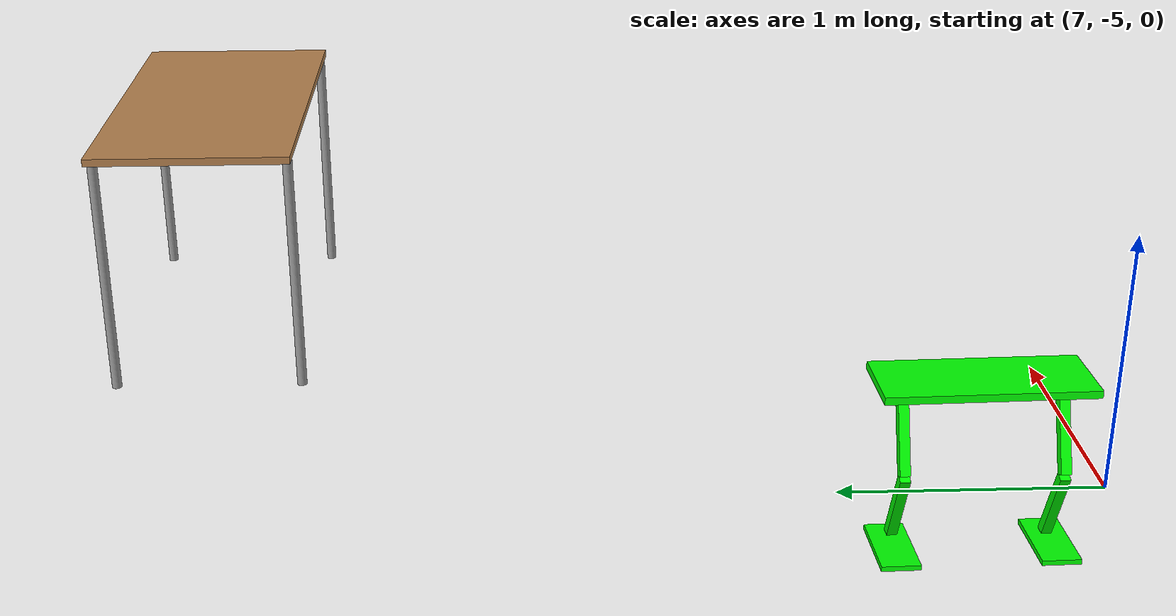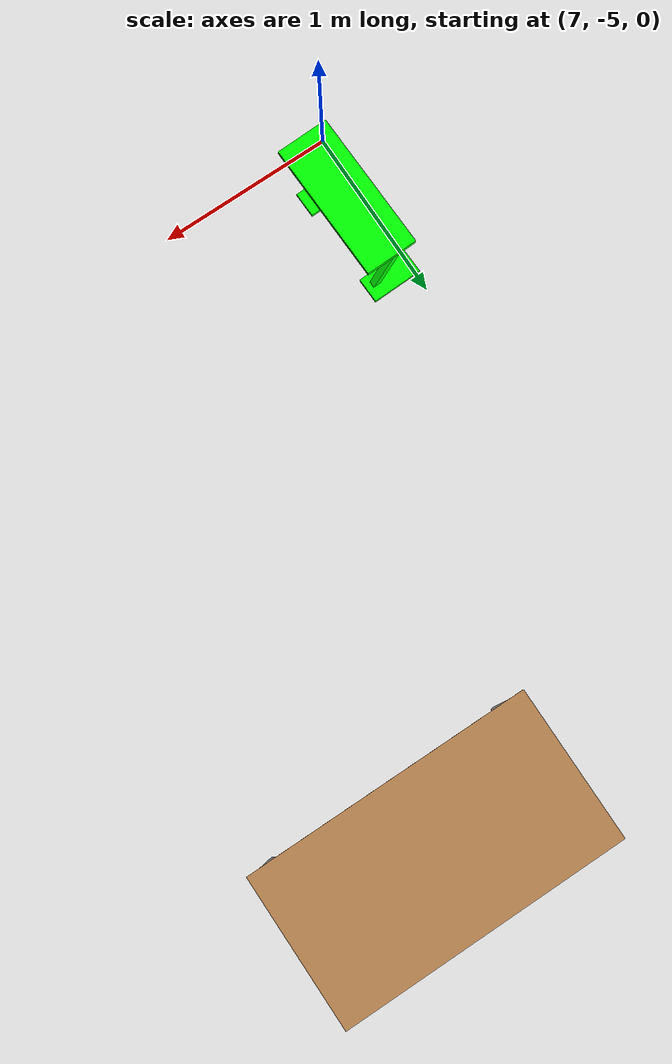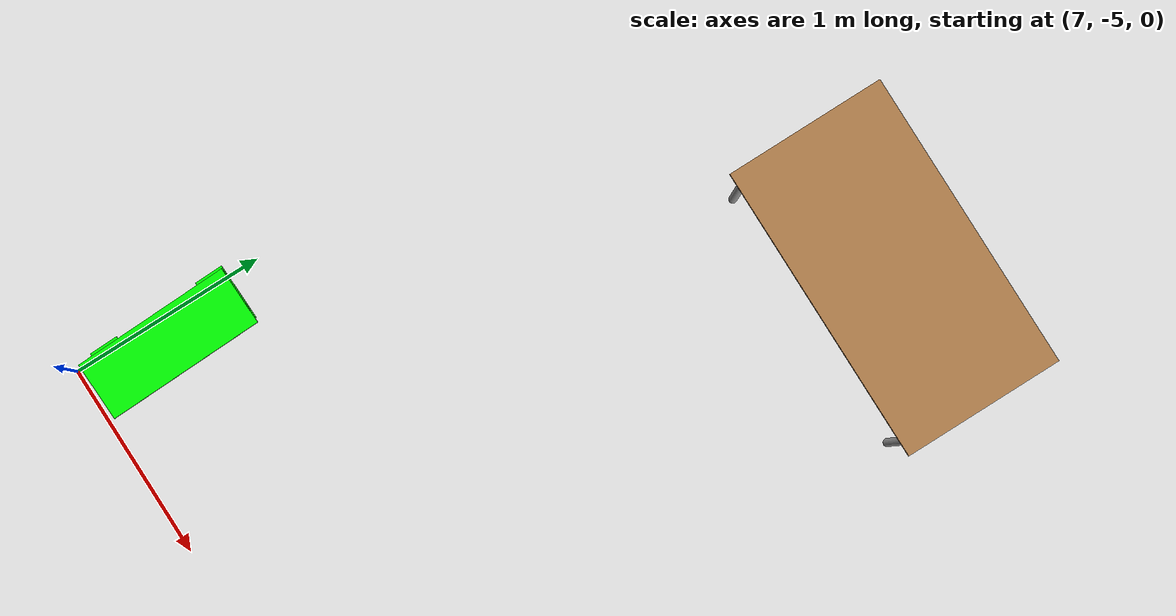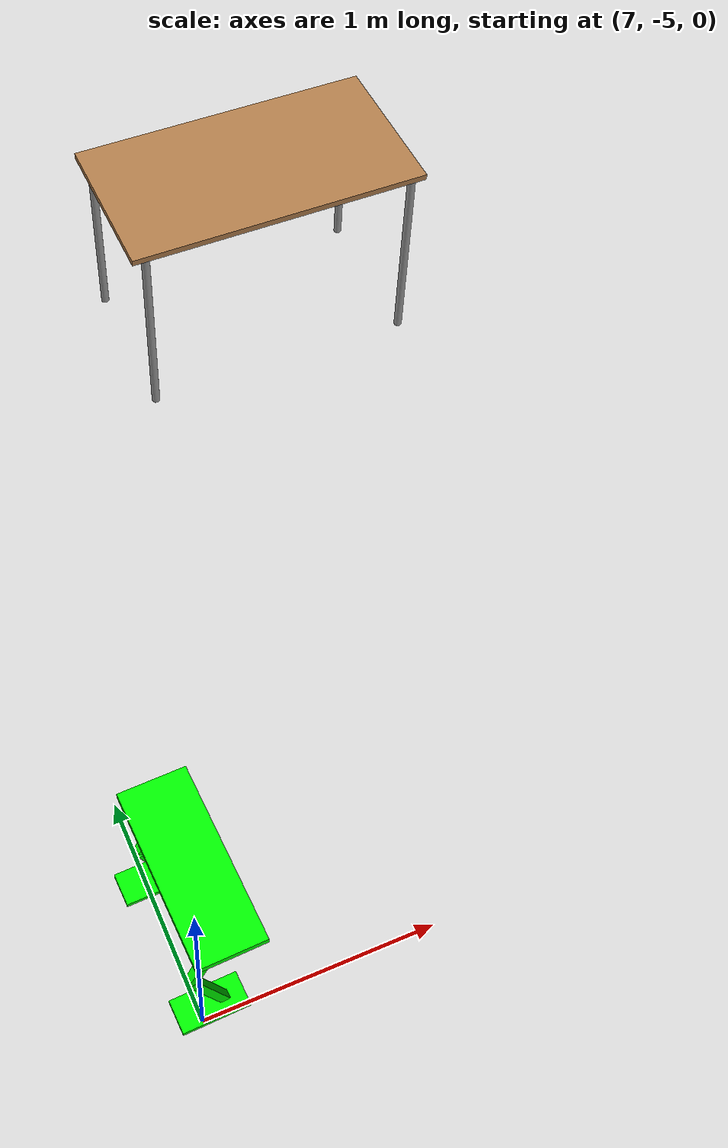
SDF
<sdf version="1.6">
 <world name="__default__">
  <model name="table_9">
   <static>1</static>
   <link name="link">
    <collision name="surface">
     <pose>0 0 1 0 -0 0</pose>
     <geometry><box><size>1.5 0.8 0.03</size></box></geometry>
     <surface><friction><ode><mu>0.6</mu><mu2>0.6</mu2></ode></friction></surface>
    </collision>
    <visual name="visual1">
     <pose>0 0 1 0 -0 0</pose>
     <geometry><box><size>1.5 0.8 0.03</size></box></geometry>
     <material>
      <script><uri>file://media/materials/scripts/gazebo.material</uri><name>Gazebo/Wood</name></script>
     </material>
    </visual>
    <collision name="front_left_leg">
     <pose>0.68 0.38 0.5 0 -0 0</pose>
     <geometry><cylinder><radius>0.02</radius><length>1</length></cylinder></geometry>
    </collision>
    <visual name="front_left_leg">
     <pose>0.68 0.38 0.5 0 -0 0</pose>
     <geometry><cylinder><radius>0.02</radius><length>1</length></cylinder></geometry>
     <material>
      <script><uri>file://media/materials/scripts/gazebo.material</uri><name>Gazebo/Grey</name></script>
     </material>
    </visual>
    <collision name="front_right_leg">
     <pose>0.68 -0.38 0.5 0 -0 0</pose>
     <geometry><cylinder><radius>0.02</radius><length>1</length></cylinder></geometry>
    </collision>
    <visual name="front_right_leg">
     <pose>0.68 -0.38 0.5 0 -0 0</pose>
     <geometry><cylinder><radius>0.02</radius><length>1</length></cylinder></geometry>
     <material>
      <script><uri>file://media/materials/scripts/gazebo.material</uri><name>Gazebo/Grey</name></script>
     </material>
    </visual>
    <collision name="back_right_leg">
     <pose>-0.68 -0.38 0.5 0 -0 0</pose>
     <geometry><cylinder><radius>0.02</radius><length>1</length></cylinder></geometry>
    </collision>
    <visual name="back_right_leg">
     <pose>-0.68 -0.38 0.5 0 -0 0</pose>
     <geometry><cylinder><radius>0.02</radius><length>1</length></cylinder></geometry>
     <material>
      <script><uri>file://media/materials/scripts/gazebo.material</uri><name>Gazebo/Grey</name></script>
     </material>
    </visual>
    <collision name="back_left_leg">
     <pose>-0.68 0.38 0.5 0 -0 0</pose>
     <geometry><cylinder><radius>0.02</radius><length>1</length></cylinder></geometry>
    </collision>
    <visual name="back_left_leg">
     <pose>-0.68 0.38 0.5 0 -0 0</pose>
     <geometry><cylinder><radius>0.02</radius><length>1</length></cylinder></geometry>
     <material>
      <script><uri>file://media/materials/scripts/gazebo.material</uri><name>Gazebo/Grey</name></script>
     </material>
    </visual>
   </link>
   <pose>8.64486 -1.56892 0 0 -0 0</pose>
  </model>
  <model name="HumanoidRobot_0">
   <link name="link_0">
    <inertial>
     <mass>0.01</mass>
     <inertia>
      <ixx>0.00166667</ixx>
      <ixy>0</ixy>
      <ixz>0</ixz>
      <iyy>0.00166667</iyy>
      <iyz>0</iyz>
      <izz>0.00166667</izz>
     </inertia>
    </inertial>
    <pose>0.307131 0.017264 -0.279905 0 -0 0</pose>
    <visual name="visual">
     <geometry><box><size>0.15 0.3 0.02</size></box></geometry>
     <material>
      <lighting>1</lighting>
      <script><uri>file://media/materials/scripts/gazebo.material</uri><name>Gazebo/Grey</name></script>
      <shader type="pixel"><normal_map>__default__</normal_map></shader>
      <ambient>0 1 0 1</ambient>
      <diffuse>0.7 0.7 0.7 1</diffuse>
      <specular>0.01 0.01 0.01 1</specular>
      <emissive>0 0 0 1</emissive>
     </material>
    </visual>
    <collision name="collision">
     <geometry><box><size>0.15 0.3 0.02</size></box></geometry>
     <surface>
      <friction>
       <ode><mu>1</mu><mu2>1</mu2><fdir1>0 0 0</fdir1><slip1>0</slip1><slip2>0</slip2></ode>
       <torsional>
        <coefficient>1</coefficient>
        <patch_radius>0</patch_radius>
        <surface_radius>0</surface_radius>
        <use_patch_radius>1</use_patch_radius>
        <ode><slip>0</slip></ode>
       </torsional>
      </friction>
      <bounce><restitution_coefficient>0</restitution_coefficient><threshold>1e+06</threshold></bounce>
      <contact>
       <collide_without_contact>0</collide_without_contact>
       <collide_without_contact_bitmask>1</collide_without_contact_bitmask>
       <collide_bitmask>1</collide_bitmask>
       <ode>
        <soft_cfm>0</soft_cfm>
        <soft_erp>0.2</soft_erp>
        <kp>1e+13</kp>
        <kd>1</kd>
        <max_vel>0.01</max_vel>
        <min_depth>0</min_depth>
       </ode>
       <bullet>
        <split_impulse>1</split_impulse>
        <split_impulse_penetration_threshold>-0.01</split_impulse_penetration_threshold>
        <soft_cfm>0</soft_cfm>
        <soft_erp>0.2</soft_erp>
        <kp>1e+13</kp>
        <kd>1</kd>
       </bullet>
      </contact>
     </surface>
    </collision>
   </link>
   <link name="link_0_clone">
    <inertial>
     <mass>0.01</mass>
     <inertia>
      <ixx>0.00166667</ixx>
      <ixy>0</ixy>
      <ixz>0</ixz>
      <iyy>0.00166667</iyy>
      <iyz>0</iyz>
      <izz>0.00166667</izz>
     </inertia>
    </inertial>
    <pose>-0.298802 0.017264 -0.279905 0 -0 0</pose>
    <visual name="visual">
     <geometry><box><size>0.15 0.3 0.02</size></box></geometry>
     <material>
      <lighting>1</lighting>
      <script><uri>file://media/materials/scripts/gazebo.material</uri><name>Gazebo/Grey</name></script>
      <shader type="pixel"><normal_map>__default__</normal_map></shader>
      <ambient>0 1 0 1</ambient>
      <diffuse>0.7 0.7 0.7 1</diffuse>
      <specular>0.01 0.01 0.01 1</specular>
      <emissive>0 0 0 1</emissive>
     </material>
    </visual>
    <collision name="collision">
     <geometry><box><size>0.15 0.3 0.02</size></box></geometry>
     <surface>
      <friction>
       <ode><mu>1</mu><mu2>1</mu2><fdir1>0 0 0</fdir1><slip1>0</slip1><slip2>0</slip2></ode>
       <torsional>
        <coefficient>1</coefficient>
        <patch_radius>0</patch_radius>
        <surface_radius>0</surface_radius>
        <use_patch_radius>1</use_patch_radius>
        <ode><slip>0</slip></ode>
       </torsional>
      </friction>
      <bounce><restitution_coefficient>0</restitution_coefficient><threshold>1e+06</threshold></bounce>
      <contact>
       <collide_without_contact>0</collide_without_contact>
       <collide_without_contact_bitmask>1</collide_without_contact_bitmask>
       <collide_bitmask>1</collide_bitmask>
       <ode>
        <soft_cfm>0</soft_cfm>
        <soft_erp>0.2</soft_erp>
        <kp>1e+13</kp>
        <kd>1</kd>
        <max_vel>0.01</max_vel>
        <min_depth>0</min_depth>
       </ode>
       <bullet>
        <split_impulse>1</split_impulse>
        <split_impulse_penetration_threshold>-0.01</split_impulse_penetration_threshold>
        <soft_cfm>0</soft_cfm>
        <soft_erp>0.2</soft_erp>
        <kp>1e+13</kp>
        <kd>1</kd>
       </bullet>
      </contact>
     </surface>
    </collision>
   </link>
   <link name="link_1">
    <inertial>
     <mass>0.3</mass>
     <inertia><ixx>0.05</ixx><ixy>0</ixy><ixz>0</ixz><iyy>0.05</iyy><iyz>0</iyz><izz>0.05</izz></inertia>
    </inertial>
    <pose>0.29303 -0.009452 -0.120931 0 -0 0</pose>
    <visual name="visual">
     <pose>0 0 0 -0.4 0 0</pose>
     <geometry><box><size>0.04 0.04 0.35</size></box></geometry>
     <material>
      <lighting>1</lighting>
      <script><uri>file://media/materials/scripts/gazebo.material</uri><name>Gazebo/Grey</name></script>
      <shader type="pixel"><normal_map>__default__</normal_map></shader>
      <ambient>0 1 0 1</ambient>
      <diffuse>0.7 0.7 0.7 1</diffuse>
      <specular>0.01 0.01 0.01 1</specular>
      <emissive>0 0 0 1</emissive>
     </material>
    </visual>
    <collision name="collision">
     <pose>0 0 0 -0.4 0 0</pose>
     <geometry><box><size>0.04 0.04 0.35</size></box></geometry>
     <surface>
      <friction>
       <ode><mu>1</mu><mu2>1</mu2><fdir1>0 0 0</fdir1><slip1>0</slip1><slip2>0</slip2></ode>
       <torsional>
        <coefficient>1</coefficient>
        <patch_radius>0</patch_radius>
        <surface_radius>0</surface_radius>
        <use_patch_radius>1</use_patch_radius>
        <ode><slip>0</slip></ode>
       </torsional>
      </friction>
      <bounce><restitution_coefficient>0</restitution_coefficient><threshold>1e+06</threshold></bounce>
      <contact>
       <collide_without_contact>0</collide_without_contact>
       <collide_without_contact_bitmask>1</collide_without_contact_bitmask>
       <collide_bitmask>1</collide_bitmask>
       <ode>
        <soft_cfm>0</soft_cfm>
        <soft_erp>0.2</soft_erp>
        <kp>1e+13</kp>
        <kd>1</kd>
        <max_vel>0.01</max_vel>
        <min_depth>0</min_depth>
       </ode>
       <bullet>
        <split_impulse>1</split_impulse>
        <split_impulse_penetration_threshold>-0.01</split_impulse_penetration_threshold>
        <soft_cfm>0</soft_cfm>
        <soft_erp>0.2</soft_erp>
        <kp>1e+13</kp>
        <kd>1</kd>
       </bullet>
      </contact>
     </surface>
    </collision>
   </link>
   <link name="link_1_clone">
    <inertial>
     <mass>0.3</mass>
     <inertia><ixx>0.05</ixx><ixy>0</ixy><ixz>0</ixz><iyy>0.05</iyy><iyz>0</iyz><izz>0.05</izz></inertia>
    </inertial>
    <pose>0.295816 -0.009452 0.210095 0 -0 0</pose>
    <visual name="visual">
     <pose>0 0 0 0.4 -0 0</pose>
     <geometry><box><size>0.04 0.04 0.35</size></box></geometry>
     <material>
      <lighting>1</lighting>
      <script><uri>file://media/materials/scripts/gazebo.material</uri><name>Gazebo/Grey</name></script>
      <shader type="pixel"><normal_map>__default__</normal_map></shader>
      <ambient>0 1 0 1</ambient>
      <diffuse>0.7 0.7 0.7 1</diffuse>
      <specular>0.01 0.01 0.01 1</specular>
      <emissive>0 0 0 1</emissive>
     </material>
    </visual>
    <collision name="collision">
     <pose>0 0 0 0.4 -0 0</pose>
     <geometry><box><size>0.04 0.04 0.35</size></box></geometry>
     <surface>
      <friction>
       <ode><mu>1</mu><mu2>1</mu2><fdir1>0 0 0</fdir1><slip1>0</slip1><slip2>0</slip2></ode>
       <torsional>
        <coefficient>1</coefficient>
        <patch_radius>0</patch_radius>
        <surface_radius>0</surface_radius>
        <use_patch_radius>1</use_patch_radius>
        <ode><slip>0</slip></ode>
       </torsional>
      </friction>
      <bounce><restitution_coefficient>0</restitution_coefficient><threshold>1e+06</threshold></bounce>
      <contact>
       <collide_without_contact>0</collide_without_contact>
       <collide_without_contact_bitmask>1</collide_without_contact_bitmask>
       <collide_bitmask>1</collide_bitmask>
       <ode>
        <soft_cfm>0</soft_cfm>
        <soft_erp>0.2</soft_erp>
        <kp>1e+13</kp>
        <kd>1</kd>
        <max_vel>0.01</max_vel>
        <min_depth>0</min_depth>
       </ode>
       <bullet>
        <split_impulse>1</split_impulse>
        <split_impulse_penetration_threshold>-0.01</split_impulse_penetration_threshold>
        <soft_cfm>0</soft_cfm>
        <soft_erp>0.2</soft_erp>
        <kp>1e+13</kp>
        <kd>1</kd>
       </bullet>
      </contact>
     </surface>
    </collision>
   </link>
   <link name="link_1_clone_0">
    <inertial>
     <mass>0.3</mass>
     <inertia><ixx>0.05</ixx><ixy>0</ixy><ixz>0</ixz><iyy>0.05</iyy><iyz>0</iyz><izz>0.05</izz></inertia>
    </inertial>
    <pose>-0.298802 0.017264 -0.120931 0 -0 0</pose>
    <visual name="visual">
     <pose>0 0 0 -0.4 0 0</pose>
     <geometry><box><size>0.04 0.04 0.35</size></box></geometry>
     <material>
      <lighting>1</lighting>
      <script><uri>file://media/materials/scripts/gazebo.material</uri><name>Gazebo/Grey</name></script>
      <shader type="pixel"><normal_map>__default__</normal_map></shader>
      <ambient>0 1 0 1</ambient>
      <diffuse>0.7 0.7 0.7 1</diffuse>
      <specular>0.01 0.01 0.01 1</specular>
      <emissive>0 0 0 1</emissive>
     </material>
    </visual>
    <collision name="collision">
     <pose>0 0 0 -0.4 0 0</pose>
     <geometry><box><size>0.04 0.04 0.35</size></box></geometry>
     <surface>
      <friction>
       <ode><mu>1</mu><mu2>1</mu2><fdir1>0 0 0</fdir1><slip1>0</slip1><slip2>0</slip2></ode>
       <torsional>
        <coefficient>1</coefficient>
        <patch_radius>0</patch_radius>
        <surface_radius>0</surface_radius>
        <use_patch_radius>1</use_patch_radius>
        <ode><slip>0</slip></ode>
       </torsional>
      </friction>
      <bounce><restitution_coefficient>0</restitution_coefficient><threshold>1e+06</threshold></bounce>
      <contact>
       <collide_without_contact>0</collide_without_contact>
       <collide_without_contact_bitmask>1</collide_without_contact_bitmask>
       <collide_bitmask>1</collide_bitmask>
       <ode>
        <soft_cfm>0</soft_cfm>
        <soft_erp>0.2</soft_erp>
        <kp>1e+13</kp>
        <kd>1</kd>
        <max_vel>0.01</max_vel>
        <min_depth>0</min_depth>
       </ode>
       <bullet>
        <split_impulse>1</split_impulse>
        <split_impulse_penetration_threshold>-0.01</split_impulse_penetration_threshold>
        <soft_cfm>0</soft_cfm>
        <soft_erp>0.2</soft_erp>
        <kp>1e+13</kp>
        <kd>1</kd>
       </bullet>
      </contact>
     </surface>
    </collision>
   </link>
   <link name="link_1_clone_clone">
    <inertial>
     <mass>0.3</mass>
     <inertia><ixx>0.05</ixx><ixy>0</ixy><ixz>0</ixz><iyy>0.05</iyy><iyz>0</iyz><izz>0.05</izz></inertia>
    </inertial>
    <pose>-0.298802 0.017264 0.210095 0 -0 0</pose>
    <visual name="visual">
     <pose>0 0 0 0.4 -0 0</pose>
     <geometry><box><size>0.04 0.04 0.35</size></box></geometry>
     <material>
      <lighting>1</lighting>
      <script><uri>file://media/materials/scripts/gazebo.material</uri><name>Gazebo/Grey</name></script>
      <shader type="pixel"><normal_map>__default__</normal_map></shader>
      <ambient>0 1 0 1</ambient>
      <diffuse>0.7 0.7 0.7 1</diffuse>
      <specular>0.01 0.01 0.01 1</specular>
      <emissive>0 0 0 1</emissive>
     </material>
    </visual>
    <collision name="collision">
     <pose>0 0 0 0.4 -0 0</pose>
     <geometry><box><size>0.04 0.04 0.35</size></box></geometry>
     <surface>
      <friction>
       <ode><mu>1</mu><mu2>1</mu2><fdir1>0 0 0</fdir1><slip1>0</slip1><slip2>0</slip2></ode>
       <torsional>
        <coefficient>1</coefficient>
        <patch_radius>0</patch_radius>
        <surface_radius>0</surface_radius>
        <use_patch_radius>1</use_patch_radius>
        <ode><slip>0</slip></ode>
       </torsional>
      </friction>
      <bounce><restitution_coefficient>0</restitution_coefficient><threshold>1e+06</threshold></bounce>
      <contact>
       <collide_without_contact>0</collide_without_contact>
       <collide_without_contact_bitmask>1</collide_without_contact_bitmask>
       <collide_bitmask>1</collide_bitmask>
       <ode>
        <soft_cfm>0</soft_cfm>
        <soft_erp>0.2</soft_erp>
        <kp>1e+13</kp>
        <kd>1</kd>
        <max_vel>0.01</max_vel>
        <min_depth>0</min_depth>
       </ode>
       <bullet>
        <split_impulse>1</split_impulse>
        <split_impulse_penetration_threshold>-0.01</split_impulse_penetration_threshold>
        <soft_cfm>0</soft_cfm>
        <soft_erp>0.2</soft_erp>
        <kp>1e+13</kp>
        <kd>1</kd>
       </bullet>
      </contact>
     </surface>
    </collision>
   </link>
   <link name="link_2">
    <inertial>
     <mass>0.1</mass>
     <inertia>
      <ixx>0.0166667</ixx>
      <ixy>0</ixy>
      <ixz>0</ixz>
      <iyy>0.0166667</iyy>
      <iyz>0</iyz>
      <izz>0.0166667</izz>
     </inertia>
    </inertial>
    <pose>0.000431 -0.050152 0.381484 0 -0 0</pose>
    <visual name="visual">
     <geometry><box><size>0.8 0.3 0.03</size></box></geometry>
     <material>
      <lighting>1</lighting>
      <script><uri>file://media/materials/scripts/gazebo.material</uri><name>Gazebo/Grey</name></script>
      <shader type="pixel"><normal_map>__default__</normal_map></shader>
      <ambient>0 1 0 1</ambient>
      <diffuse>0.7 0.7 0.7 1</diffuse>
      <specular>0.01 0.01 0.01 1</specular>
      <emissive>0 0 0 1</emissive>
     </material>
    </visual>
    <collision name="collision">
     <geometry><box><size>0.8 0.3 0.03</size></box></geometry>
     <surface>
      <friction>
       <ode><mu>1</mu><mu2>1</mu2><fdir1>0 0 0</fdir1><slip1>0</slip1><slip2>0</slip2></ode>
       <torsional>
        <coefficient>1</coefficient>
        <patch_radius>0</patch_radius>
        <surface_radius>0</surface_radius>
        <use_patch_radius>1</use_patch_radius>
        <ode><slip>0</slip></ode>
       </torsional>
      </friction>
      <bounce><restitution_coefficient>0</restitution_coefficient><threshold>1e+06</threshold></bounce>
      <contact>
       <collide_without_contact>0</collide_without_contact>
       <collide_without_contact_bitmask>1</collide_without_contact_bitmask>
       <collide_bitmask>1</collide_bitmask>
       <ode>
        <soft_cfm>0</soft_cfm>
        <soft_erp>0.2</soft_erp>
        <kp>1e+13</kp>
        <kd>1</kd>
        <max_vel>0.01</max_vel>
        <min_depth>0</min_depth>
       </ode>
       <bullet>
        <split_impulse>1</split_impulse>
        <split_impulse_penetration_threshold>-0.01</split_impulse_penetration_threshold>
        <soft_cfm>0</soft_cfm>
        <soft_erp>0.2</soft_erp>
        <kp>1e+13</kp>
        <kd>1</kd>
       </bullet>
      </contact>
     </surface>
    </collision>
   </link>
   <joint name="link_0_JOINT_0" type="revolute">
    <parent>link_0</parent>
    <child>link_1</child>
    <axis>
     <xyz>1 0 0</xyz>
     <limit>
      <lower>-1.79769e+308</lower>
      <upper>1.79769e+308</upper>
      <effort>-1</effort>
      <velocity>-1</velocity>
     </limit>
     <dynamics>
      <spring_reference>0</spring_reference>
      <spring_stiffness>0</spring_stiffness>
      <damping>0</damping>
     </dynamics>
    </axis>
    <physics>
     <ode><limit><cfm>0</cfm><erp>0.2</erp></limit><suspension><cfm>0</cfm><erp>0.2</erp></suspension></ode>
    </physics>
   </joint>
   <joint name="link_0_clone_JOINT_2" type="revolute">
    <parent>link_0_clone</parent>
    <child>link_1_clone_0</child>
    <axis>
     <xyz>1 0 0</xyz>
     <limit>
      <lower>-1.79769e+308</lower>
      <upper>1.79769e+308</upper>
      <effort>-1</effort>
      <velocity>-1</velocity>
     </limit>
     <dynamics>
      <spring_reference>0</spring_reference>
      <spring_stiffness>0</spring_stiffness>
      <damping>0</damping>
     </dynamics>
    </axis>
    <physics>
     <ode><limit><cfm>0</cfm><erp>0.2</erp></limit><suspension><cfm>0</cfm><erp>0.2</erp></suspension></ode>
    </physics>
   </joint>
   <joint name="link_1_JOINT_1" type="revolute">
    <parent>link_1</parent>
    <child>link_1_clone</child>
    <axis>
     <xyz>1 0 0</xyz>
     <limit>
      <lower>-1.79769e+308</lower>
      <upper>1.79769e+308</upper>
      <effort>-1</effort>
      <velocity>-1</velocity>
     </limit>
     <dynamics>
      <spring_reference>0</spring_reference>
      <spring_stiffness>0</spring_stiffness>
      <damping>0</damping>
     </dynamics>
    </axis>
    <physics>
     <ode><limit><cfm>0</cfm><erp>0.2</erp></limit><suspension><cfm>0</cfm><erp>0.2</erp></suspension></ode>
    </physics>
   </joint>
   <joint name="link_1_clone_0_JOINT_3" type="revolute">
    <parent>link_1_clone_0</parent>
    <child>link_1_clone_clone</child>
    <axis>
     <xyz>1 0 0</xyz>
     <limit>
      <lower>-1.79769e+308</lower>
      <upper>1.79769e+308</upper>
      <effort>-1</effort>
      <velocity>-1</velocity>
     </limit>
     <dynamics>
      <spring_reference>0</spring_reference>
      <spring_stiffness>0</spring_stiffness>
      <damping>0</damping>
     </dynamics>
    </axis>
    <physics>
     <ode><limit><cfm>0</cfm><erp>0.2</erp></limit><suspension><cfm>0</cfm><erp>0.2</erp></suspension></ode>
    </physics>
   </joint>
   <joint name="link_1_clone_JOINT_5" type="revolute">
    <parent>link_1_clone</parent>
    <child>link_2</child>
    <axis>
     <xyz>1 0 0</xyz>
     <limit>
      <lower>-1.79769e+308</lower>
      <upper>1.79769e+308</upper>
      <effort>-1</effort>
      <velocity>-1</velocity>
     </limit>
     <dynamics>
      <spring_reference>0</spring_reference>
      <spring_stiffness>0</spring_stiffness>
      <damping>0</damping>
     </dynamics>
    </axis>
    <physics>
     <ode><limit><cfm>0</cfm><erp>0.2</erp></limit><suspension><cfm>0</cfm><erp>0.2</erp></suspension></ode>
    </physics>
   </joint>
   <joint name="link_1_clone_clone_JOINT_4" type="revolute">
    <parent>link_1_clone_clone</parent>
    <child>link_2</child>
    <axis>
     <xyz>1 0 0</xyz>
     <limit>
      <lower>-1.79769e+308</lower>
      <upper>1.79769e+308</upper>
      <effort>-1</effort>
      <velocity>-1</velocity>
     </limit>
     <dynamics>
      <spring_reference>0</spring_reference>
      <spring_stiffness>0</spring_stiffness>
      <damping>0</damping>
     </dynamics>
    </axis>
    <physics>
     <ode><limit><cfm>0</cfm><erp>0.2</erp></limit><suspension><cfm>0</cfm><erp>0.2</erp></suspension></ode>
    </physics>
   </joint>
   <static>1</static>
   <pose>7.09279 -4.5485 0 0 -0 1.60075</pose>
  </model>
 </world>
</sdf>
